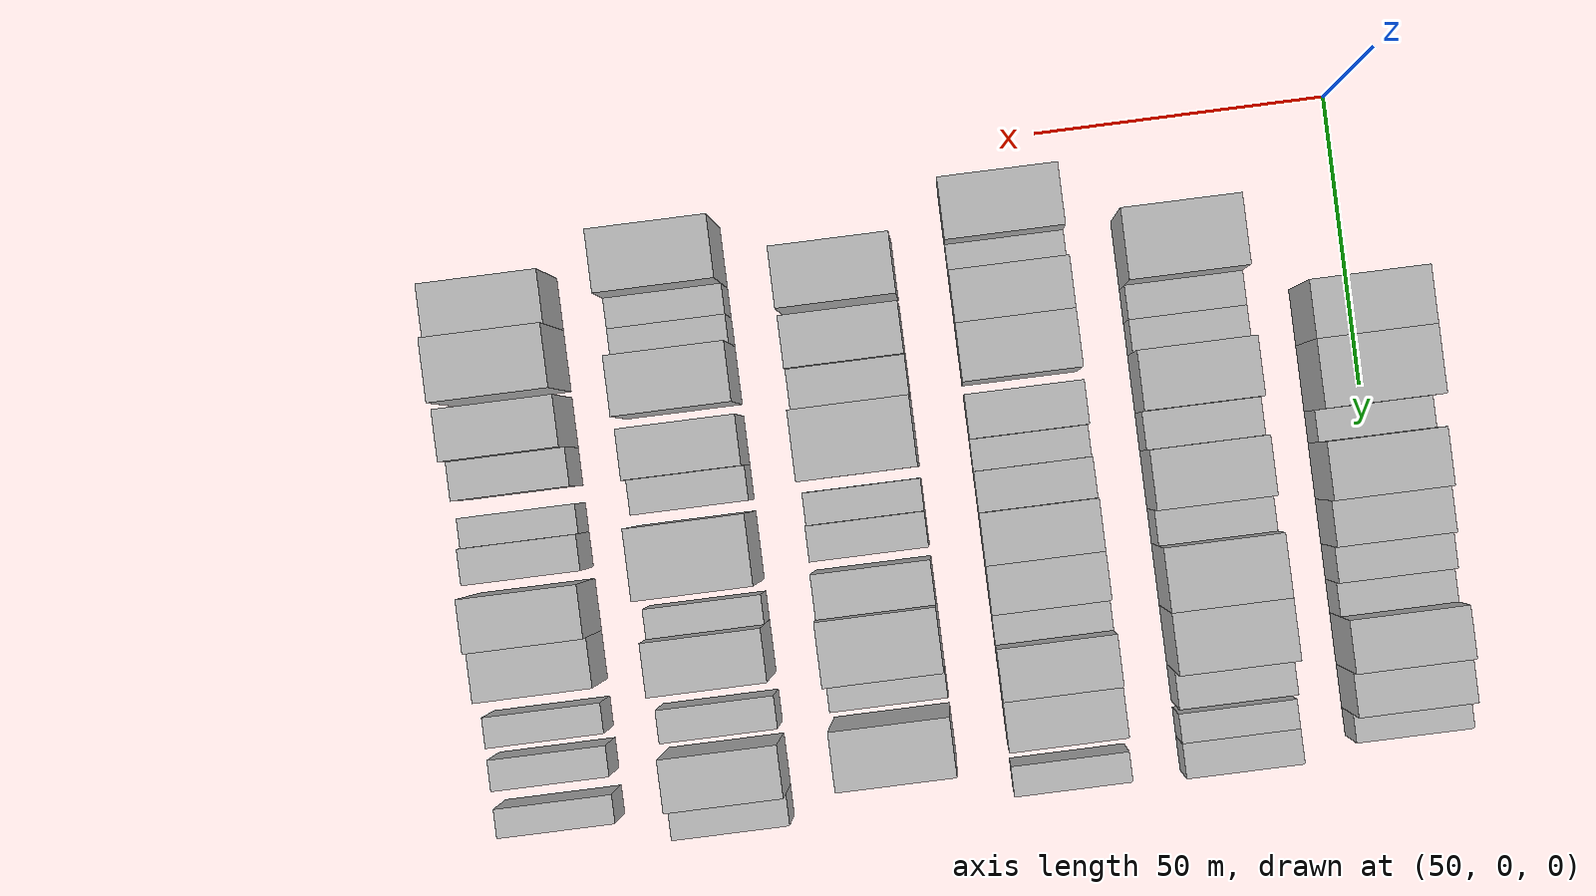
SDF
<sdf version="1.6">
 <world name="default">
  <model name="building_61">
   <static>1</static>
   <pose>50.0000 37.0883 0 0.000000 0.000000 0.000000</pose>
   <link name="link">
    <pose>0 0 12.00 0 0 0</pose>
    <collision name="collision"><geometry><box><size>20.0000 9.7241 24.0000</size></box></geometry></collision>
    <visual name="visual">
     <cast_shadows>0</cast_shadows>
     <geometry><box><size>20.0000 9.7241 24.0000</size></box></geometry>
     <material>
      <script>
       <uri>model://HANNAS_wall/materials/scripts</uri>
       <uri>model://HANNAS_wall/materials/textures</uri>
       <name>vrc/HANNAS_wall</name>
      </script>
     </material>
    </visual>
   </link>
  </model>
  <model name="building_62">
   <static>1</static>
   <pose>50.0000 47.6798 0 0.000000 0.000000 0.000000</pose>
   <link name="link">
    <pose>0 0 12.00 0 0 0</pose>
    <collision name="collision"><geometry><box><size>20.0000 11.4591 24.0000</size></box></geometry></collision>
    <visual name="visual">
     <cast_shadows>0</cast_shadows>
     <geometry><box><size>20.0000 11.4591 24.0000</size></box></geometry>
     <material>
      <script>
       <uri>model://HANNAS_wall/materials/scripts</uri>
       <uri>model://HANNAS_wall/materials/textures</uri>
       <name>vrc/HANNAS_wall</name>
      </script>
     </material>
    </visual>
   </link>
  </model>
  <model name="building_63">
   <static>1</static>
   <pose>50.0000 56.1127 0 0.000000 0.000000 0.000000</pose>
   <link name="link">
    <pose>0 0 6.00 0 0 0</pose>
    <collision name="collision"><geometry><box><size>20.0000 5.4068 12.0000</size></box></geometry></collision>
    <visual name="visual">
     <cast_shadows>0</cast_shadows>
     <geometry><box><size>20.0000 5.4068 12.0000</size></box></geometry>
     <material>
      <script>
       <uri>model://HANNAS_wall/materials/scripts</uri>
       <uri>model://HANNAS_wall/materials/textures</uri>
       <name>vrc/HANNAS_wall</name>
      </script>
     </material>
    </visual>
   </link>
  </model>
  <model name="building_64">
   <static>1</static>
   <pose>50.0000 63.6961 0 0.000000 0.000000 0.000000</pose>
   <link name="link">
    <pose>0 0 10.50 0 0 0</pose>
    <collision name="collision"><geometry><box><size>20.0000 9.7600 21.0000</size></box></geometry></collision>
    <visual name="visual">
     <cast_shadows>0</cast_shadows>
     <geometry><box><size>20.0000 9.7600 21.0000</size></box></geometry>
     <material>
      <script>
       <uri>model://HANNAS_wall/materials/scripts</uri>
       <uri>model://HANNAS_wall/materials/textures</uri>
       <name>vrc/HANNAS_wall</name>
      </script>
     </material>
    </visual>
   </link>
  </model>
  <model name="building_65">
   <static>1</static>
   <pose>50.0000 72.4733 0 0.000000 0.000000 0.000000</pose>
   <link name="link">
    <pose>0 0 9.00 0 0 0</pose>
    <collision name="collision"><geometry><box><size>20.0000 7.7944 18.0000</size></box></geometry></collision>
    <visual name="visual">
     <cast_shadows>0</cast_shadows>
     <geometry><box><size>20.0000 7.7944 18.0000</size></box></geometry>
     <material>
      <script>
       <uri>model://HANNAS_wall/materials/scripts</uri>
       <uri>model://HANNAS_wall/materials/textures</uri>
       <name>vrc/HANNAS_wall</name>
      </script>
     </material>
    </visual>
   </link>
  </model>
  <model name="building_66">
   <static>1</static>
   <pose>50.0000 79.4519 0 0.000000 0.000000 0.000000</pose>
   <link name="link">
    <pose>0 0 7.50 0 0 0</pose>
    <collision name="collision"><geometry><box><size>20.0000 6.1628 15.0000</size></box></geometry></collision>
    <visual name="visual">
     <cast_shadows>0</cast_shadows>
     <geometry><box><size>20.0000 6.1628 15.0000</size></box></geometry>
     <material>
      <script>
       <uri>model://HANNAS_wall/materials/scripts</uri>
       <uri>model://HANNAS_wall/materials/textures</uri>
       <name>vrc/HANNAS_wall</name>
      </script>
     </material>
    </visual>
   </link>
  </model>
  <model name="building_67">
   <static>1</static>
   <pose>50.0000 85.4316 0 0.000000 0.000000 0.000000</pose>
   <link name="link">
    <pose>0 0 6.00 0 0 0</pose>
    <collision name="collision"><geometry><box><size>20.0000 5.7966 12.0000</size></box></geometry></collision>
    <visual name="visual">
     <cast_shadows>0</cast_shadows>
     <geometry><box><size>20.0000 5.7966 12.0000</size></box></geometry>
     <material>
      <script>
       <uri>model://HANNAS_wall/materials/scripts</uri>
       <uri>model://HANNAS_wall/materials/textures</uri>
       <name>vrc/HANNAS_wall</name>
      </script>
     </material>
    </visual>
   </link>
  </model>
  <model name="building_68">
   <static>1</static>
   <pose>50.0000 92.8019 0 0.000000 0.000000 0.000000</pose>
   <link name="link">
    <pose>0 0 10.50 0 0 0</pose>
    <collision name="collision"><geometry><box><size>20.0000 8.9439 21.0000</size></box></geometry></collision>
    <visual name="visual">
     <cast_shadows>0</cast_shadows>
     <geometry><box><size>20.0000 8.9439 21.0000</size></box></geometry>
     <material>
      <script>
       <uri>model://HANNAS_wall/materials/scripts</uri>
       <uri>model://HANNAS_wall/materials/textures</uri>
       <name>vrc/HANNAS_wall</name>
      </script>
     </material>
    </visual>
   </link>
  </model>
  <model name="building_69">
   <static>1</static>
   <pose>50.0000 101.0400 0 0.000000 0.000000 0.000000</pose>
   <link name="link">
    <pose>0 0 9.00 0 0 0</pose>
    <collision name="collision"><geometry><box><size>20.0000 7.5323 18.0000</size></box></geometry></collision>
    <visual name="visual">
     <cast_shadows>0</cast_shadows>
     <geometry><box><size>20.0000 7.5323 18.0000</size></box></geometry>
     <material>
      <script>
       <uri>model://HANNAS_wall/materials/scripts</uri>
       <uri>model://HANNAS_wall/materials/textures</uri>
       <name>vrc/HANNAS_wall</name>
      </script>
     </material>
    </visual>
   </link>
  </model>
  <model name="building_70">
   <static>1</static>
   <pose>50.0000 107.2394 0 0.000000 0.000000 0.000000</pose>
   <link name="link">
    <pose>0 0 6.00 0 0 0</pose>
    <collision name="collision"><geometry><box><size>20.0000 4.8665 12.0000</size></box></geometry></collision>
    <visual name="visual">
     <cast_shadows>0</cast_shadows>
     <geometry><box><size>20.0000 4.8665 12.0000</size></box></geometry>
     <material>
      <script>
       <uri>model://HANNAS_wall/materials/scripts</uri>
       <uri>model://HANNAS_wall/materials/textures</uri>
       <name>vrc/HANNAS_wall</name>
      </script>
     </material>
    </visual>
   </link>
  </model>
  <model name="building_166">
   <static>1</static>
   <pose>79.0000 22.7145 0 0.000000 0.000000 0.000000</pose>
   <link name="link">
    <pose>0 0 12.00 0 0 0</pose>
    <collision name="collision"><geometry><box><size>20.0000 11.8195 24.0000</size></box></geometry></collision>
    <visual name="visual">
     <cast_shadows>0</cast_shadows>
     <geometry><box><size>20.0000 11.8195 24.0000</size></box></geometry>
     <material>
      <script>
       <uri>model://HANNAS_wall/materials/scripts</uri>
       <uri>model://HANNAS_wall/materials/textures</uri>
       <name>vrc/HANNAS_wall</name>
      </script>
     </material>
    </visual>
   </link>
  </model>
  <model name="building_167">
   <static>1</static>
   <pose>79.0000 31.5368 0 0.000000 0.000000 0.000000</pose>
   <link name="link">
    <pose>0 0 6.00 0 0 0</pose>
    <collision name="collision"><geometry><box><size>20.0000 5.8250 12.0000</size></box></geometry></collision>
    <visual name="visual">
     <cast_shadows>0</cast_shadows>
     <geometry><box><size>20.0000 5.8250 12.0000</size></box></geometry>
     <material>
      <script>
       <uri>model://HANNAS_wall/materials/scripts</uri>
       <uri>model://HANNAS_wall/materials/textures</uri>
       <name>vrc/HANNAS_wall</name>
      </script>
     </material>
    </visual>
   </link>
  </model>
  <model name="building_168">
   <static>1</static>
   <pose>79.0000 37.2338 0 0.000000 0.000000 0.000000</pose>
   <link name="link">
    <pose>0 0 6.00 0 0 0</pose>
    <collision name="collision"><geometry><box><size>20.0000 5.5691 12.0000</size></box></geometry></collision>
    <visual name="visual">
     <cast_shadows>0</cast_shadows>
     <geometry><box><size>20.0000 5.5691 12.0000</size></box></geometry>
     <material>
      <script>
       <uri>model://HANNAS_wall/materials/scripts</uri>
       <uri>model://HANNAS_wall/materials/textures</uri>
       <name>vrc/HANNAS_wall</name>
      </script>
     </material>
    </visual>
   </link>
  </model>
  <model name="building_169">
   <static>1</static>
   <pose>79.0000 45.0373 0 0.000000 0.000000 0.000000</pose>
   <link name="link">
    <pose>0 0 10.50 0 0 0</pose>
    <collision name="collision"><geometry><box><size>20.0000 10.0377 21.0000</size></box></geometry></collision>
    <visual name="visual">
     <cast_shadows>0</cast_shadows>
     <geometry><box><size>20.0000 10.0377 21.0000</size></box></geometry>
     <material>
      <script>
       <uri>model://HANNAS_wall/materials/scripts</uri>
       <uri>model://HANNAS_wall/materials/textures</uri>
       <name>vrc/HANNAS_wall</name>
      </script>
     </material>
    </visual>
   </link>
  </model>
  <model name="building_170">
   <static>1</static>
   <pose>79.0000 53.2776 0 0.000000 0.000000 0.000000</pose>
   <link name="link">
    <pose>0 0 7.50 0 0 0</pose>
    <collision name="collision"><geometry><box><size>20.0000 6.4429 15.0000</size></box></geometry></collision>
    <visual name="visual">
     <cast_shadows>0</cast_shadows>
     <geometry><box><size>20.0000 6.4429 15.0000</size></box></geometry>
     <material>
      <script>
       <uri>model://HANNAS_wall/materials/scripts</uri>
       <uri>model://HANNAS_wall/materials/textures</uri>
       <name>vrc/HANNAS_wall</name>
      </script>
     </material>
    </visual>
   </link>
  </model>
  <model name="building_171">
   <static>1</static>
   <pose>79.0000 61.5204 0 0.000000 0.000000 0.000000</pose>
   <link name="link">
    <pose>0 0 10.50 0 0 0</pose>
    <collision name="collision"><geometry><box><size>20.0000 10.0426 21.0000</size></box></geometry></collision>
    <visual name="visual">
     <cast_shadows>0</cast_shadows>
     <geometry><box><size>20.0000 10.0426 21.0000</size></box></geometry>
     <material>
      <script>
       <uri>model://HANNAS_wall/materials/scripts</uri>
       <uri>model://HANNAS_wall/materials/textures</uri>
       <name>vrc/HANNAS_wall</name>
      </script>
     </material>
    </visual>
   </link>
  </model>
  <model name="building_172">
   <static>1</static>
   <pose>79.0000 69.5714 0 0.000000 0.000000 0.000000</pose>
   <link name="link">
    <pose>0 0 7.50 0 0 0</pose>
    <collision name="collision"><geometry><box><size>20.0000 6.0594 15.0000</size></box></geometry></collision>
    <visual name="visual">
     <cast_shadows>0</cast_shadows>
     <geometry><box><size>20.0000 6.0594 15.0000</size></box></geometry>
     <material>
      <script>
       <uri>model://HANNAS_wall/materials/scripts</uri>
       <uri>model://HANNAS_wall/materials/textures</uri>
       <name>vrc/HANNAS_wall</name>
      </script>
     </material>
    </visual>
   </link>
  </model>
  <model name="building_173">
   <static>1</static>
   <pose>79.0000 77.9523 0 0.000000 0.000000 0.000000</pose>
   <link name="link">
    <pose>0 0 12.00 0 0 0</pose>
    <collision name="collision"><geometry><box><size>20.0000 10.7023 24.0000</size></box></geometry></collision>
    <visual name="visual">
     <cast_shadows>0</cast_shadows>
     <geometry><box><size>20.0000 10.7023 24.0000</size></box></geometry>
     <material>
      <script>
       <uri>model://HANNAS_wall/materials/scripts</uri>
       <uri>model://HANNAS_wall/materials/textures</uri>
       <name>vrc/HANNAS_wall</name>
      </script>
     </material>
    </visual>
   </link>
  </model>
  <model name="building_174">
   <static>1</static>
   <pose>79.0000 88.4673 0 0.000000 0.000000 0.000000</pose>
   <link name="link">
    <pose>0 0 12.00 0 0 0</pose>
    <collision name="collision"><geometry><box><size>20.0000 10.3277 24.0000</size></box></geometry></collision>
    <visual name="visual">
     <cast_shadows>0</cast_shadows>
     <geometry><box><size>20.0000 10.3277 24.0000</size></box></geometry>
     <material>
      <script>
       <uri>model://HANNAS_wall/materials/scripts</uri>
       <uri>model://HANNAS_wall/materials/textures</uri>
       <name>vrc/HANNAS_wall</name>
      </script>
     </material>
    </visual>
   </link>
  </model>
  <model name="building_175">
   <static>1</static>
   <pose>79.0000 96.8550 0 0.000000 0.000000 0.000000</pose>
   <link name="link">
    <pose>0 0 7.50 0 0 0</pose>
    <collision name="collision"><geometry><box><size>20.0000 6.4478 15.0000</size></box></geometry></collision>
    <visual name="visual">
     <cast_shadows>0</cast_shadows>
     <geometry><box><size>20.0000 6.4478 15.0000</size></box></geometry>
     <material>
      <script>
       <uri>model://HANNAS_wall/materials/scripts</uri>
       <uri>model://HANNAS_wall/materials/textures</uri>
       <name>vrc/HANNAS_wall</name>
      </script>
     </material>
    </visual>
   </link>
  </model>
  <model name="building_176">
   <static>1</static>
   <pose>79.0000 103.5895 0 0.000000 0.000000 0.000000</pose>
   <link name="link">
    <pose>0 0 6.00 0 0 0</pose>
    <collision name="collision"><geometry><box><size>20.0000 5.0211 12.0000</size></box></geometry></collision>
    <visual name="visual">
     <cast_shadows>0</cast_shadows>
     <geometry><box><size>20.0000 5.0211 12.0000</size></box></geometry>
     <material>
      <script>
       <uri>model://HANNAS_wall/materials/scripts</uri>
       <uri>model://HANNAS_wall/materials/textures</uri>
       <name>vrc/HANNAS_wall</name>
      </script>
     </material>
    </visual>
   </link>
  </model>
  <model name="building_177">
   <static>1</static>
   <pose>79.0000 109.0724 0 0.000000 0.000000 0.000000</pose>
   <link name="link">
    <pose>0 0 6.00 0 0 0</pose>
    <collision name="collision"><geometry><box><size>20.0000 5.9446 12.0000</size></box></geometry></collision>
    <visual name="visual">
     <cast_shadows>0</cast_shadows>
     <geometry><box><size>20.0000 5.9446 12.0000</size></box></geometry>
     <material>
      <script>
       <uri>model://HANNAS_wall/materials/scripts</uri>
       <uri>model://HANNAS_wall/materials/textures</uri>
       <name>vrc/HANNAS_wall</name>
      </script>
     </material>
    </visual>
   </link>
  </model>
  <model name="building_282">
   <static>1</static>
   <pose>108.0000 12.8897 0 0.000000 0.000000 0.000000</pose>
   <link name="link">
    <pose>0 0 10.50 0 0 0</pose>
    <collision name="collision"><geometry><box><size>20.0000 10.3580 21.0000</size></box></geometry></collision>
    <visual name="visual">
     <cast_shadows>0</cast_shadows>
     <geometry><box><size>20.0000 10.3580 21.0000</size></box></geometry>
     <material>
      <script>
       <uri>model://HANNAS_wall/materials/scripts</uri>
       <uri>model://HANNAS_wall/materials/textures</uri>
       <name>vrc/HANNAS_wall</name>
      </script>
     </material>
    </visual>
   </link>
  </model>
  <model name="building_283">
   <static>1</static>
   <pose>108.0000 20.5739 0 0.000000 0.000000 0.000000</pose>
   <link name="link">
    <pose>0 0 6.00 0 0 0</pose>
    <collision name="collision"><geometry><box><size>20.0000 5.0103 12.0000</size></box></geometry></collision>
    <visual name="visual">
     <cast_shadows>0</cast_shadows>
     <geometry><box><size>20.0000 5.0103 12.0000</size></box></geometry>
     <material>
      <script>
       <uri>model://HANNAS_wall/materials/scripts</uri>
       <uri>model://HANNAS_wall/materials/textures</uri>
       <name>vrc/HANNAS_wall</name>
      </script>
     </material>
    </visual>
   </link>
  </model>
  <model name="building_284">
   <static>1</static>
   <pose>108.0000 27.4460 0 0.000000 0.000000 0.000000</pose>
   <link name="link">
    <pose>0 0 10.50 0 0 0</pose>
    <collision name="collision"><geometry><box><size>20.0000 8.7338 21.0000</size></box></geometry></collision>
    <visual name="visual">
     <cast_shadows>0</cast_shadows>
     <geometry><box><size>20.0000 8.7338 21.0000</size></box></geometry>
     <material>
      <script>
       <uri>model://HANNAS_wall/materials/scripts</uri>
       <uri>model://HANNAS_wall/materials/textures</uri>
       <name>vrc/HANNAS_wall</name>
      </script>
     </material>
    </visual>
   </link>
  </model>
  <model name="building_285">
   <static>1</static>
   <pose>108.0000 36.6938 0 0.000000 0.000000 0.000000</pose>
   <link name="link">
    <pose>0 0 10.50 0 0 0</pose>
    <collision name="collision"><geometry><box><size>20.0000 9.7617 21.0000</size></box></geometry></collision>
    <visual name="visual">
     <cast_shadows>0</cast_shadows>
     <geometry><box><size>20.0000 9.7617 21.0000</size></box></geometry>
     <material>
      <script>
       <uri>model://HANNAS_wall/materials/scripts</uri>
       <uri>model://HANNAS_wall/materials/textures</uri>
       <name>vrc/HANNAS_wall</name>
      </script>
     </material>
    </visual>
   </link>
  </model>
  <model name="building_286">
   <static>1</static>
   <pose>108.0000 47.2908 0 0.000000 0.000000 0.000000</pose>
   <link name="link">
    <pose>0 0 9.00 0 0 0</pose>
    <collision name="collision"><geometry><box><size>20.0000 7.4323 18.0000</size></box></geometry></collision>
    <visual name="visual">
     <cast_shadows>0</cast_shadows>
     <geometry><box><size>20.0000 7.4323 18.0000</size></box></geometry>
     <material>
      <script>
       <uri>model://HANNAS_wall/materials/scripts</uri>
       <uri>model://HANNAS_wall/materials/textures</uri>
       <name>vrc/HANNAS_wall</name>
      </script>
     </material>
    </visual>
   </link>
  </model>
  <model name="building_287">
   <static>1</static>
   <pose>108.0000 53.7093 0 0.000000 0.000000 0.000000</pose>
   <link name="link">
    <pose>0 0 6.00 0 0 0</pose>
    <collision name="collision"><geometry><box><size>20.0000 5.4048 12.0000</size></box></geometry></collision>
    <visual name="visual">
     <cast_shadows>0</cast_shadows>
     <geometry><box><size>20.0000 5.4048 12.0000</size></box></geometry>
     <material>
      <script>
       <uri>model://HANNAS_wall/materials/scripts</uri>
       <uri>model://HANNAS_wall/materials/textures</uri>
       <name>vrc/HANNAS_wall</name>
      </script>
     </material>
    </visual>
   </link>
  </model>
  <model name="building_288">
   <static>1</static>
   <pose>108.0000 59.8747 0 0.000000 0.000000 0.000000</pose>
   <link name="link">
    <pose>0 0 7.50 0 0 0</pose>
    <collision name="collision"><geometry><box><size>20.0000 6.9261 15.0000</size></box></geometry></collision>
    <visual name="visual">
     <cast_shadows>0</cast_shadows>
     <geometry><box><size>20.0000 6.9261 15.0000</size></box></geometry>
     <material>
      <script>
       <uri>model://HANNAS_wall/materials/scripts</uri>
       <uri>model://HANNAS_wall/materials/textures</uri>
       <name>vrc/HANNAS_wall</name>
      </script>
     </material>
    </visual>
   </link>
  </model>
  <model name="building_289">
   <static>1</static>
   <pose>108.0000 67.7629 0 0.000000 0.000000 0.000000</pose>
   <link name="link">
    <pose>0 0 9.00 0 0 0</pose>
    <collision name="collision"><geometry><box><size>20.0000 8.8503 18.0000</size></box></geometry></collision>
    <visual name="visual">
     <cast_shadows>0</cast_shadows>
     <geometry><box><size>20.0000 8.8503 18.0000</size></box></geometry>
     <material>
      <script>
       <uri>model://HANNAS_wall/materials/scripts</uri>
       <uri>model://HANNAS_wall/materials/textures</uri>
       <name>vrc/HANNAS_wall</name>
      </script>
     </material>
    </visual>
   </link>
  </model>
  <model name="building_290">
   <static>1</static>
   <pose>108.0000 76.2866 0 0.000000 0.000000 0.000000</pose>
   <link name="link">
    <pose>0 0 9.00 0 0 0</pose>
    <collision name="collision"><geometry><box><size>20.0000 8.1970 18.0000</size></box></geometry></collision>
    <visual name="visual">
     <cast_shadows>0</cast_shadows>
     <geometry><box><size>20.0000 8.1970 18.0000</size></box></geometry>
     <material>
      <script>
       <uri>model://HANNAS_wall/materials/scripts</uri>
       <uri>model://HANNAS_wall/materials/textures</uri>
       <name>vrc/HANNAS_wall</name>
      </script>
     </material>
    </visual>
   </link>
  </model>
  <model name="building_291">
   <static>1</static>
   <pose>108.0000 83.0765 0 0.000000 0.000000 0.000000</pose>
   <link name="link">
    <pose>0 0 6.00 0 0 0</pose>
    <collision name="collision"><geometry><box><size>20.0000 5.3829 12.0000</size></box></geometry></collision>
    <visual name="visual">
     <cast_shadows>0</cast_shadows>
     <geometry><box><size>20.0000 5.3829 12.0000</size></box></geometry>
     <material>
      <script>
       <uri>model://HANNAS_wall/materials/scripts</uri>
       <uri>model://HANNAS_wall/materials/textures</uri>
       <name>vrc/HANNAS_wall</name>
      </script>
     </material>
    </visual>
   </link>
  </model>
  <model name="building_292">
   <static>1</static>
   <pose>108.0000 90.1662 0 0.000000 0.000000 0.000000</pose>
   <link name="link">
    <pose>0 0 10.50 0 0 0</pose>
    <collision name="collision"><geometry><box><size>20.0000 8.7966 21.0000</size></box></geometry></collision>
    <visual name="visual">
     <cast_shadows>0</cast_shadows>
     <geometry><box><size>20.0000 8.7966 21.0000</size></box></geometry>
     <material>
      <script>
       <uri>model://HANNAS_wall/materials/scripts</uri>
       <uri>model://HANNAS_wall/materials/textures</uri>
       <name>vrc/HANNAS_wall</name>
      </script>
     </material>
    </visual>
   </link>
  </model>
  <model name="building_293">
   <static>1</static>
   <pose>108.0000 98.9221 0 0.000000 0.000000 0.000000</pose>
   <link name="link">
    <pose>0 0 9.00 0 0 0</pose>
    <collision name="collision"><geometry><box><size>20.0000 8.7151 18.0000</size></box></geometry></collision>
    <visual name="visual">
     <cast_shadows>0</cast_shadows>
     <geometry><box><size>20.0000 8.7151 18.0000</size></box></geometry>
     <material>
      <script>
       <uri>model://HANNAS_wall/materials/scripts</uri>
       <uri>model://HANNAS_wall/materials/textures</uri>
       <name>vrc/HANNAS_wall</name>
      </script>
     </material>
    </visual>
   </link>
  </model>
  <model name="building_294">
   <static>1</static>
   <pose>108.0000 108.8463 0 0.000000 0.000000 0.000000</pose>
   <link name="link">
    <pose>0 0 6.00 0 0 0</pose>
    <collision name="collision"><geometry><box><size>20.0000 5.1335 12.0000</size></box></geometry></collision>
    <visual name="visual">
     <cast_shadows>0</cast_shadows>
     <geometry><box><size>20.0000 5.1335 12.0000</size></box></geometry>
     <material>
      <script>
       <uri>model://HANNAS_wall/materials/scripts</uri>
       <uri>model://HANNAS_wall/materials/textures</uri>
       <name>vrc/HANNAS_wall</name>
      </script>
     </material>
    </visual>
   </link>
  </model>
  <model name="building_396">
   <static>1</static>
   <pose>137.0000 20.6025 0 0.000000 0.000000 0.000000</pose>
   <link name="link">
    <pose>0 0 10.50 0 0 0</pose>
    <collision name="collision"><geometry><box><size>20.0000 10.2807 21.0000</size></box></geometry></collision>
    <visual name="visual">
     <cast_shadows>0</cast_shadows>
     <geometry><box><size>20.0000 10.2807 21.0000</size></box></geometry>
     <material>
      <script>
       <uri>model://HANNAS_wall/materials/scripts</uri>
       <uri>model://HANNAS_wall/materials/textures</uri>
       <name>vrc/HANNAS_wall</name>
      </script>
     </material>
    </visual>
   </link>
  </model>
  <model name="building_397">
   <static>1</static>
   <pose>137.0000 31.1529 0 0.000000 0.000000 0.000000</pose>
   <link name="link">
    <pose>0 0 9.00 0 0 0</pose>
    <collision name="collision"><geometry><box><size>20.0000 8.8202 18.0000</size></box></geometry></collision>
    <visual name="visual">
     <cast_shadows>0</cast_shadows>
     <geometry><box><size>20.0000 8.8202 18.0000</size></box></geometry>
     <material>
      <script>
       <uri>model://HANNAS_wall/materials/scripts</uri>
       <uri>model://HANNAS_wall/materials/textures</uri>
       <name>vrc/HANNAS_wall</name>
      </script>
     </material>
    </visual>
   </link>
  </model>
  <model name="building_398">
   <static>1</static>
   <pose>137.0000 39.0773 0 0.000000 0.000000 0.000000</pose>
   <link name="link">
    <pose>0 0 7.50 0 0 0</pose>
    <collision name="collision"><geometry><box><size>20.0000 7.0286 15.0000</size></box></geometry></collision>
    <visual name="visual">
     <cast_shadows>0</cast_shadows>
     <geometry><box><size>20.0000 7.0286 15.0000</size></box></geometry>
     <material>
      <script>
       <uri>model://HANNAS_wall/materials/scripts</uri>
       <uri>model://HANNAS_wall/materials/textures</uri>
       <name>vrc/HANNAS_wall</name>
      </script>
     </material>
    </visual>
   </link>
  </model>
  <model name="building_399">
   <static>1</static>
   <pose>137.0000 48.4893 0 0.000000 0.000000 0.000000</pose>
   <link name="link">
    <pose>0 0 12.00 0 0 0</pose>
    <collision name="collision"><geometry><box><size>20.0000 11.7953 24.0000</size></box></geometry></collision>
    <visual name="visual">
     <cast_shadows>0</cast_shadows>
     <geometry><box><size>20.0000 11.7953 24.0000</size></box></geometry>
     <material>
      <script>
       <uri>model://HANNAS_wall/materials/scripts</uri>
       <uri>model://HANNAS_wall/materials/textures</uri>
       <name>vrc/HANNAS_wall</name>
      </script>
     </material>
    </visual>
   </link>
  </model>
  <model name="building_400">
   <static>1</static>
   <pose>137.0000 59.1410 0 0.000000 0.000000 0.000000</pose>
   <link name="link">
    <pose>0 0 6.00 0 0 0</pose>
    <collision name="collision"><geometry><box><size>20.0000 5.5082 12.0000</size></box></geometry></collision>
    <visual name="visual">
     <cast_shadows>0</cast_shadows>
     <geometry><box><size>20.0000 5.5082 12.0000</size></box></geometry>
     <material>
      <script>
       <uri>model://HANNAS_wall/materials/scripts</uri>
       <uri>model://HANNAS_wall/materials/textures</uri>
       <name>vrc/HANNAS_wall</name>
      </script>
     </material>
    </visual>
   </link>
  </model>
  <model name="building_401">
   <static>1</static>
   <pose>137.0000 64.8999 0 0.000000 0.000000 0.000000</pose>
   <link name="link">
    <pose>0 0 7.50 0 0 0</pose>
    <collision name="collision"><geometry><box><size>20.0000 6.0095 15.0000</size></box></geometry></collision>
    <visual name="visual">
     <cast_shadows>0</cast_shadows>
     <geometry><box><size>20.0000 6.0095 15.0000</size></box></geometry>
     <material>
      <script>
       <uri>model://HANNAS_wall/materials/scripts</uri>
       <uri>model://HANNAS_wall/materials/textures</uri>
       <name>vrc/HANNAS_wall</name>
      </script>
     </material>
    </visual>
   </link>
  </model>
  <model name="building_402">
   <static>1</static>
   <pose>137.0000 73.6758 0 0.000000 0.000000 0.000000</pose>
   <link name="link">
    <pose>0 0 9.00 0 0 0</pose>
    <collision name="collision"><geometry><box><size>20.0000 7.5424 18.0000</size></box></geometry></collision>
    <visual name="visual">
     <cast_shadows>0</cast_shadows>
     <geometry><box><size>20.0000 7.5424 18.0000</size></box></geometry>
     <material>
      <script>
       <uri>model://HANNAS_wall/materials/scripts</uri>
       <uri>model://HANNAS_wall/materials/textures</uri>
       <name>vrc/HANNAS_wall</name>
      </script>
     </material>
    </visual>
   </link>
  </model>
  <model name="building_403">
   <static>1</static>
   <pose>137.0000 82.8810 0 0.000000 0.000000 0.000000</pose>
   <link name="link">
    <pose>0 0 12.00 0 0 0</pose>
    <collision name="collision"><geometry><box><size>20.0000 10.8679 24.0000</size></box></geometry></collision>
    <visual name="visual">
     <cast_shadows>0</cast_shadows>
     <geometry><box><size>20.0000 10.8679 24.0000</size></box></geometry>
     <material>
      <script>
       <uri>model://HANNAS_wall/materials/scripts</uri>
       <uri>model://HANNAS_wall/materials/textures</uri>
       <name>vrc/HANNAS_wall</name>
      </script>
     </material>
    </visual>
   </link>
  </model>
  <model name="building_404">
   <static>1</static>
   <pose>137.0000 90.8894 0 0.000000 0.000000 0.000000</pose>
   <link name="link">
    <pose>0 0 6.00 0 0 0</pose>
    <collision name="collision"><geometry><box><size>20.0000 5.1489 12.0000</size></box></geometry></collision>
    <visual name="visual">
     <cast_shadows>0</cast_shadows>
     <geometry><box><size>20.0000 5.1489 12.0000</size></box></geometry>
     <material>
      <script>
       <uri>model://HANNAS_wall/materials/scripts</uri>
       <uri>model://HANNAS_wall/materials/textures</uri>
       <name>vrc/HANNAS_wall</name>
      </script>
     </material>
    </visual>
   </link>
  </model>
  <model name="building_405">
   <static>1</static>
   <pose>137.0000 100.4379 0 0.000000 0.000000 0.000000</pose>
   <link name="link">
    <pose>0 0 12.00 0 0 0</pose>
    <collision name="collision"><geometry><box><size>20.0000 9.9482 24.0000</size></box></geometry></collision>
    <visual name="visual">
     <cast_shadows>0</cast_shadows>
     <geometry><box><size>20.0000 9.9482 24.0000</size></box></geometry>
     <material>
      <script>
       <uri>model://HANNAS_wall/materials/scripts</uri>
       <uri>model://HANNAS_wall/materials/textures</uri>
       <name>vrc/HANNAS_wall</name>
      </script>
     </material>
    </visual>
   </link>
  </model>
  <model name="building_512">
   <static>1</static>
   <pose>166.0000 14.4923 0 0.000000 0.000000 0.000000</pose>
   <link name="link">
    <pose>0 0 12.00 0 0 0</pose>
    <collision name="collision"><geometry><box><size>20.0000 10.5001 24.0000</size></box></geometry></collision>
    <visual name="visual">
     <cast_shadows>0</cast_shadows>
     <geometry><box><size>20.0000 10.5001 24.0000</size></box></geometry>
     <material>
      <script>
       <uri>model://HANNAS_wall/materials/scripts</uri>
       <uri>model://HANNAS_wall/materials/textures</uri>
       <name>vrc/HANNAS_wall</name>
      </script>
     </material>
    </visual>
   </link>
  </model>
  <model name="building_513">
   <static>1</static>
   <pose>166.0000 22.3355 0 0.000000 0.000000 0.000000</pose>
   <link name="link">
    <pose>0 0 6.00 0 0 0</pose>
    <collision name="collision"><geometry><box><size>20.0000 5.1864 12.0000</size></box></geometry></collision>
    <visual name="visual">
     <cast_shadows>0</cast_shadows>
     <geometry><box><size>20.0000 5.1864 12.0000</size></box></geometry>
     <material>
      <script>
       <uri>model://HANNAS_wall/materials/scripts</uri>
       <uri>model://HANNAS_wall/materials/textures</uri>
       <name>vrc/HANNAS_wall</name>
      </script>
     </material>
    </visual>
   </link>
  </model>
  <model name="building_514">
   <static>1</static>
   <pose>166.0000 27.3898 0 0.000000 0.000000 0.000000</pose>
   <link name="link">
    <pose>0 0 6.00 0 0 0</pose>
    <collision name="collision"><geometry><box><size>20.0000 4.9222 12.0000</size></box></geometry></collision>
    <visual name="visual">
     <cast_shadows>0</cast_shadows>
     <geometry><box><size>20.0000 4.9222 12.0000</size></box></geometry>
     <material>
      <script>
       <uri>model://HANNAS_wall/materials/scripts</uri>
       <uri>model://HANNAS_wall/materials/textures</uri>
       <name>vrc/HANNAS_wall</name>
      </script>
     </material>
    </visual>
   </link>
  </model>
  <model name="building_515">
   <static>1</static>
   <pose>166.0000 34.9013 0 0.000000 0.000000 0.000000</pose>
   <link name="link">
    <pose>0 0 10.50 0 0 0</pose>
    <collision name="collision"><geometry><box><size>20.0000 10.1008 21.0000</size></box></geometry></collision>
    <visual name="visual">
     <cast_shadows>0</cast_shadows>
     <geometry><box><size>20.0000 10.1008 21.0000</size></box></geometry>
     <material>
      <script>
       <uri>model://HANNAS_wall/materials/scripts</uri>
       <uri>model://HANNAS_wall/materials/textures</uri>
       <name>vrc/HANNAS_wall</name>
      </script>
     </material>
    </visual>
   </link>
  </model>
  <model name="building_516">
   <static>1</static>
   <pose>166.0000 46.2376 0 0.000000 0.000000 0.000000</pose>
   <link name="link">
    <pose>0 0 9.00 0 0 0</pose>
    <collision name="collision"><geometry><box><size>20.0000 8.5716 18.0000</size></box></geometry></collision>
    <visual name="visual">
     <cast_shadows>0</cast_shadows>
     <geometry><box><size>20.0000 8.5716 18.0000</size></box></geometry>
     <material>
      <script>
       <uri>model://HANNAS_wall/materials/scripts</uri>
       <uri>model://HANNAS_wall/materials/textures</uri>
       <name>vrc/HANNAS_wall</name>
      </script>
     </material>
    </visual>
   </link>
  </model>
  <model name="building_517">
   <static>1</static>
   <pose>166.0000 53.4778 0 0.000000 0.000000 0.000000</pose>
   <link name="link">
    <pose>0 0 6.00 0 0 0</pose>
    <collision name="collision"><geometry><box><size>20.0000 5.9089 12.0000</size></box></geometry></collision>
    <visual name="visual">
     <cast_shadows>0</cast_shadows>
     <geometry><box><size>20.0000 5.9089 12.0000</size></box></geometry>
     <material>
      <script>
       <uri>model://HANNAS_wall/materials/scripts</uri>
       <uri>model://HANNAS_wall/materials/textures</uri>
       <name>vrc/HANNAS_wall</name>
      </script>
     </material>
    </visual>
   </link>
  </model>
  <model name="building_518">
   <static>1</static>
   <pose>166.0000 64.3938 0 0.000000 0.000000 0.000000</pose>
   <link name="link">
    <pose>0 0 12.00 0 0 0</pose>
    <collision name="collision"><geometry><box><size>20.0000 11.9231 24.0000</size></box></geometry></collision>
    <visual name="visual">
     <cast_shadows>0</cast_shadows>
     <geometry><box><size>20.0000 11.9231 24.0000</size></box></geometry>
     <material>
      <script>
       <uri>model://HANNAS_wall/materials/scripts</uri>
       <uri>model://HANNAS_wall/materials/textures</uri>
       <name>vrc/HANNAS_wall</name>
      </script>
     </material>
    </visual>
   </link>
  </model>
  <model name="building_519">
   <static>1</static>
   <pose>166.0000 74.8889 0 0.000000 0.000000 0.000000</pose>
   <link name="link">
    <pose>0 0 6.00 0 0 0</pose>
    <collision name="collision"><geometry><box><size>20.0000 5.0672 12.0000</size></box></geometry></collision>
    <visual name="visual">
     <cast_shadows>0</cast_shadows>
     <geometry><box><size>20.0000 5.0672 12.0000</size></box></geometry>
     <material>
      <script>
       <uri>model://HANNAS_wall/materials/scripts</uri>
       <uri>model://HANNAS_wall/materials/textures</uri>
       <name>vrc/HANNAS_wall</name>
      </script>
     </material>
    </visual>
   </link>
  </model>
  <model name="building_520">
   <static>1</static>
   <pose>166.0000 81.9268 0 0.000000 0.000000 0.000000</pose>
   <link name="link">
    <pose>0 0 10.50 0 0 0</pose>
    <collision name="collision"><geometry><box><size>20.0000 9.0085 21.0000</size></box></geometry></collision>
    <visual name="visual">
     <cast_shadows>0</cast_shadows>
     <geometry><box><size>20.0000 9.0085 21.0000</size></box></geometry>
     <material>
      <script>
       <uri>model://HANNAS_wall/materials/scripts</uri>
       <uri>model://HANNAS_wall/materials/textures</uri>
       <name>vrc/HANNAS_wall</name>
      </script>
     </material>
    </visual>
   </link>
  </model>
  <model name="building_521">
   <static>1</static>
   <pose>166.0000 92.2499 0 0.000000 0.000000 0.000000</pose>
   <link name="link">
    <pose>0 0 6.00 0 0 0</pose>
    <collision name="collision"><geometry><box><size>20.0000 5.6377 12.0000</size></box></geometry></collision>
    <visual name="visual">
     <cast_shadows>0</cast_shadows>
     <geometry><box><size>20.0000 5.6377 12.0000</size></box></geometry>
     <material>
      <script>
       <uri>model://HANNAS_wall/materials/scripts</uri>
       <uri>model://HANNAS_wall/materials/textures</uri>
       <name>vrc/HANNAS_wall</name>
      </script>
     </material>
    </visual>
   </link>
  </model>
  <model name="building_522">
   <static>1</static>
   <pose>166.0000 101.5457 0 0.000000 0.000000 0.000000</pose>
   <link name="link">
    <pose>0 0 9.00 0 0 0</pose>
    <collision name="collision"><geometry><box><size>20.0000 8.9539 18.0000</size></box></geometry></collision>
    <visual name="visual">
     <cast_shadows>0</cast_shadows>
     <geometry><box><size>20.0000 8.9539 18.0000</size></box></geometry>
     <material>
      <script>
       <uri>model://HANNAS_wall/materials/scripts</uri>
       <uri>model://HANNAS_wall/materials/textures</uri>
       <name>vrc/HANNAS_wall</name>
      </script>
     </material>
    </visual>
   </link>
  </model>
  <model name="building_523">
   <static>1</static>
   <pose>166.0000 108.7266 0 0.000000 0.000000 0.000000</pose>
   <link name="link">
    <pose>0 0 6.00 0 0 0</pose>
    <collision name="collision"><geometry><box><size>20.0000 5.4079 12.0000</size></box></geometry></collision>
    <visual name="visual">
     <cast_shadows>0</cast_shadows>
     <geometry><box><size>20.0000 5.4079 12.0000</size></box></geometry>
     <material>
      <script>
       <uri>model://HANNAS_wall/materials/scripts</uri>
       <uri>model://HANNAS_wall/materials/textures</uri>
       <name>vrc/HANNAS_wall</name>
      </script>
     </material>
    </visual>
   </link>
  </model>
  <model name="building_625">
   <static>1</static>
   <pose>195.0000 18.8595 0 0.000000 0.000000 0.000000</pose>
   <link name="link">
    <pose>0 0 10.50 0 0 0</pose>
    <collision name="collision"><geometry><box><size>20.0000 9.0640 21.0000</size></box></geometry></collision>
    <visual name="visual">
     <cast_shadows>0</cast_shadows>
     <geometry><box><size>20.0000 9.0640 21.0000</size></box></geometry>
     <material>
      <script>
       <uri>model://HANNAS_wall/materials/scripts</uri>
       <uri>model://HANNAS_wall/materials/textures</uri>
       <name>vrc/HANNAS_wall</name>
      </script>
     </material>
    </visual>
   </link>
  </model>
  <model name="building_626">
   <static>1</static>
   <pose>195.0000 28.7337 0 0.000000 0.000000 0.000000</pose>
   <link name="link">
    <pose>0 0 12.00 0 0 0</pose>
    <collision name="collision"><geometry><box><size>20.0000 10.6844 24.0000</size></box></geometry></collision>
    <visual name="visual">
     <cast_shadows>0</cast_shadows>
     <geometry><box><size>20.0000 10.6844 24.0000</size></box></geometry>
     <material>
      <script>
       <uri>model://HANNAS_wall/materials/scripts</uri>
       <uri>model://HANNAS_wall/materials/textures</uri>
       <name>vrc/HANNAS_wall</name>
      </script>
     </material>
    </visual>
   </link>
  </model>
  <model name="building_627">
   <static>1</static>
   <pose>195.0000 39.4189 0 0.000000 0.000000 0.000000</pose>
   <link name="link">
    <pose>0 0 10.50 0 0 0</pose>
    <collision name="collision"><geometry><box><size>20.0000 8.6859 21.0000</size></box></geometry></collision>
    <visual name="visual">
     <cast_shadows>0</cast_shadows>
     <geometry><box><size>20.0000 8.6859 21.0000</size></box></geometry>
     <material>
      <script>
       <uri>model://HANNAS_wall/materials/scripts</uri>
       <uri>model://HANNAS_wall/materials/textures</uri>
       <name>vrc/HANNAS_wall</name>
      </script>
     </material>
    </visual>
   </link>
  </model>
  <model name="building_628">
   <static>1</static>
   <pose>195.0000 47.0457 0 0.000000 0.000000 0.000000</pose>
   <link name="link">
    <pose>0 0 7.50 0 0 0</pose>
    <collision name="collision"><geometry><box><size>20.0000 6.5677 15.0000</size></box></geometry></collision>
    <visual name="visual">
     <cast_shadows>0</cast_shadows>
     <geometry><box><size>20.0000 6.5677 15.0000</size></box></geometry>
     <material>
      <script>
       <uri>model://HANNAS_wall/materials/scripts</uri>
       <uri>model://HANNAS_wall/materials/textures</uri>
       <name>vrc/HANNAS_wall</name>
      </script>
     </material>
    </visual>
   </link>
  </model>
  <model name="building_629">
   <static>1</static>
   <pose>195.0000 55.8653 0 0.000000 0.000000 0.000000</pose>
   <link name="link">
    <pose>0 0 6.00 0 0 0</pose>
    <collision name="collision"><geometry><box><size>20.0000 5.0715 12.0000</size></box></geometry></collision>
    <visual name="visual">
     <cast_shadows>0</cast_shadows>
     <geometry><box><size>20.0000 5.0715 12.0000</size></box></geometry>
     <material>
      <script>
       <uri>model://HANNAS_wall/materials/scripts</uri>
       <uri>model://HANNAS_wall/materials/textures</uri>
       <name>vrc/HANNAS_wall</name>
      </script>
     </material>
    </visual>
   </link>
  </model>
  <model name="building_630">
   <static>1</static>
   <pose>195.0000 61.4601 0 0.000000 0.000000 0.000000</pose>
   <link name="link">
    <pose>0 0 7.50 0 0 0</pose>
    <collision name="collision"><geometry><box><size>20.0000 6.1182 15.0000</size></box></geometry></collision>
    <visual name="visual">
     <cast_shadows>0</cast_shadows>
     <geometry><box><size>20.0000 6.1182 15.0000</size></box></geometry>
     <material>
      <script>
       <uri>model://HANNAS_wall/materials/scripts</uri>
       <uri>model://HANNAS_wall/materials/textures</uri>
       <name>vrc/HANNAS_wall</name>
      </script>
     </material>
    </visual>
   </link>
  </model>
  <model name="building_631">
   <static>1</static>
   <pose>195.0000 71.0305 0 0.000000 0.000000 0.000000</pose>
   <link name="link">
    <pose>0 0 10.50 0 0 0</pose>
    <collision name="collision"><geometry><box><size>20.0000 9.0226 21.0000</size></box></geometry></collision>
    <visual name="visual">
     <cast_shadows>0</cast_shadows>
     <geometry><box><size>20.0000 9.0226 21.0000</size></box></geometry>
     <material>
      <script>
       <uri>model://HANNAS_wall/materials/scripts</uri>
       <uri>model://HANNAS_wall/materials/textures</uri>
       <name>vrc/HANNAS_wall</name>
      </script>
     </material>
    </visual>
   </link>
  </model>
  <model name="building_632">
   <static>1</static>
   <pose>195.0000 79.7533 0 0.000000 0.000000 0.000000</pose>
   <link name="link">
    <pose>0 0 9.00 0 0 0</pose>
    <collision name="collision"><geometry><box><size>20.0000 8.4230 18.0000</size></box></geometry></collision>
    <visual name="visual">
     <cast_shadows>0</cast_shadows>
     <geometry><box><size>20.0000 8.4230 18.0000</size></box></geometry>
     <material>
      <script>
       <uri>model://HANNAS_wall/materials/scripts</uri>
       <uri>model://HANNAS_wall/materials/textures</uri>
       <name>vrc/HANNAS_wall</name>
      </script>
     </material>
    </visual>
   </link>
  </model>
  <model name="building_633">
   <static>1</static>
   <pose>195.0000 89.5707 0 0.000000 0.000000 0.000000</pose>
   <link name="link">
    <pose>0 0 6.00 0 0 0</pose>
    <collision name="collision"><geometry><box><size>20.0000 5.2118 12.0000</size></box></geometry></collision>
    <visual name="visual">
     <cast_shadows>0</cast_shadows>
     <geometry><box><size>20.0000 5.2118 12.0000</size></box></geometry>
     <material>
      <script>
       <uri>model://HANNAS_wall/materials/scripts</uri>
       <uri>model://HANNAS_wall/materials/textures</uri>
       <name>vrc/HANNAS_wall</name>
      </script>
     </material>
    </visual>
   </link>
  </model>
  <model name="building_634">
   <static>1</static>
   <pose>195.0000 96.8187 0 0.000000 0.000000 0.000000</pose>
   <link name="link">
    <pose>0 0 6.00 0 0 0</pose>
    <collision name="collision"><geometry><box><size>20.0000 5.2843 12.0000</size></box></geometry></collision>
    <visual name="visual">
     <cast_shadows>0</cast_shadows>
     <geometry><box><size>20.0000 5.2843 12.0000</size></box></geometry>
     <material>
      <script>
       <uri>model://HANNAS_wall/materials/scripts</uri>
       <uri>model://HANNAS_wall/materials/textures</uri>
       <name>vrc/HANNAS_wall</name>
      </script>
     </material>
    </visual>
   </link>
  </model>
  <model name="building_635">
   <static>1</static>
   <pose>195.0000 104.9303 0 0.000000 0.000000 0.000000</pose>
   <link name="link">
    <pose>0 0 6.00 0 0 0</pose>
    <collision name="collision"><geometry><box><size>20.0000 4.9387 12.0000</size></box></geometry></collision>
    <visual name="visual">
     <cast_shadows>0</cast_shadows>
     <geometry><box><size>20.0000 4.9387 12.0000</size></box></geometry>
     <material>
      <script>
       <uri>model://HANNAS_wall/materials/scripts</uri>
       <uri>model://HANNAS_wall/materials/textures</uri>
       <name>vrc/HANNAS_wall</name>
      </script>
     </material>
    </visual>
   </link>
  </model>
 </world>
</sdf>
